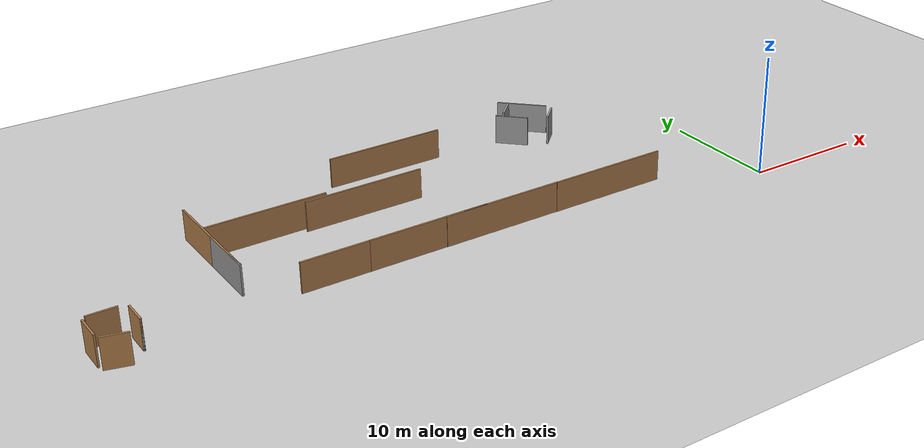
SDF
<sdf version="1.5">
 <world name="default">
  <model name="ground_plane">
   <static>1</static>
   <link name="link">
    <collision name="collision">
     <geometry><plane><normal>0 0 1</normal><size>100 100</size></plane></geometry>
     <surface><friction><ode><mu>100</mu><mu2>50</mu2></ode></friction></surface>
    </collision>
    <visual name="visual">
     <cast_shadows>0</cast_shadows>
     <geometry><plane><normal>0 0 1</normal><size>100 100</size></plane></geometry>
     <material>
      <script><uri>file://media/materials/scripts/gazebo.material</uri><name>Gazebo/Grey</name></script>
     </material>
    </visual>
   </link>
  </model>
  <model name="wall-10m-amodi_0">
   <pose>-43 11 0 0 -0 0</pose>
   <link name="Wall_24">
    <collision name="Wall_24_Collision">
     <geometry><box><size>10 0.15 2.5</size></box></geometry>
     <pose>0 0 1.25 0 -0 0</pose>
    </collision>
    <visual name="Wall_24_Visual">
     <pose>0 0 1.25 0 -0 0</pose>
     <geometry><box><size>10 0.15 2.5</size></box></geometry>
     <material>
      <script><uri>file://media/materials/scripts/gazebo.material</uri><name>Gazebo/Grey</name></script>
      <ambient>1 1 1 1</ambient>
     </material>
    </visual>
    <pose>0 -0 0 0 0 -1.5708</pose>
   </link>
   <link name="Wall_25">
    <collision name="Wall_25_Collision">
     <geometry><box><size>10 0.15 2.5</size></box></geometry>
     <pose>0 0 1.25 0 -0 0</pose>
    </collision>
    <visual name="Wall_25_Visual">
     <pose>0 0 1.25 0 -0 0</pose>
     <geometry><box><size>10 0.15 2.5</size></box></geometry>
     <material>
      <script><uri>file://media/materials/scripts/gazebo.material</uri><name>Gazebo/Wood</name></script>
      <ambient>1 1 1 1</ambient>
     </material>
    </visual>
    <pose>0 -0 0 0 -0 1.5708</pose>
   </link>
   <static>1</static>
  </model>
  <model name="wall-10m-ofoghi_3">
   <pose>-38 12.4908 0 0 -0 0</pose>
   <link name="Wall_22">
    <collision name="Wall_22_Collision">
     <geometry><box><size>10 0.15 2.5</size></box></geometry>
     <pose>0 0 1.25 0 -0 0</pose>
    </collision>
    <visual name="Wall_22_Visual">
     <pose>0 0 1.25 0 -0 0</pose>
     <geometry><box><size>10 0.15 2.5</size></box></geometry>
     <material>
      <script><uri>file://media/materials/scripts/gazebo.material</uri><name>Gazebo/Wood</name></script>
      <ambient>1 1 1 1</ambient>
     </material>
    </visual>
   </link>
   <static>1</static>
  </model>
  <model name="wall-10m-ofoghi_4">
   <pose>-30 12 0 0 -0 0</pose>
   <link name="Wall_22">
    <collision name="Wall_22_Collision">
     <geometry><box><size>10 0.15 2.5</size></box></geometry>
     <pose>0 0 1.25 0 -0 0</pose>
    </collision>
    <visual name="Wall_22_Visual">
     <pose>0 0 1.25 0 -0 0</pose>
     <geometry><box><size>10 0.15 2.5</size></box></geometry>
     <material>
      <script><uri>file://media/materials/scripts/gazebo.material</uri><name>Gazebo/Wood</name></script>
      <ambient>1 1 1 1</ambient>
     </material>
    </visual>
   </link>
   <static>1</static>
  </model>
  <model name="wall-10m-ofoghi_5">
   <pose>-12.6357 3.95502 0 0 -0 0</pose>
   <link name="Wall_22">
    <collision name="Wall_22_Collision">
     <geometry><box><size>10 0.15 2.5</size></box></geometry>
     <pose>0 0 1.25 0 -0 0</pose>
    </collision>
    <visual name="Wall_22_Visual">
     <pose>0 0 1.25 0 -0 0</pose>
     <geometry><box><size>10 0.15 2.5</size></box></geometry>
     <material>
      <script><uri>file://media/materials/scripts/gazebo.material</uri><name>Gazebo/Wood</name></script>
      <ambient>1 1 1 1</ambient>
     </material>
    </visual>
   </link>
   <static>1</static>
  </model>
  <model name="wall-10m-ofoghi_6">
   <pose>-22.5687 3.97573 0 0 -0 0</pose>
   <link name="Wall_22">
    <collision name="Wall_22_Collision">
     <geometry><box><size>10 0.15 2.5</size></box></geometry>
     <pose>0 0 1.25 0 -0 0</pose>
    </collision>
    <visual name="Wall_22_Visual">
     <pose>0 0 1.25 0 -0 0</pose>
     <geometry><box><size>10 0.15 2.5</size></box></geometry>
     <material>
      <script><uri>file://media/materials/scripts/gazebo.material</uri><name>Gazebo/Wood</name></script>
      <ambient>1 1 1 1</ambient>
     </material>
    </visual>
   </link>
   <static>1</static>
  </model>
  <model name="obs1">
   <pose>-52.8584 3.84332 0 0 -0 0</pose>
   <link name="Wall_10">
    <collision name="Wall_10_Collision">
     <geometry><box><size>2 0.15 2.5</size></box></geometry>
     <pose>0 0 1.25 0 -0 0</pose>
    </collision>
    <visual name="Wall_10_Visual">
     <pose>0 0 1.25 0 -0 0</pose>
     <geometry><box><size>2 0.15 2.5</size></box></geometry>
     <material>
      <script><uri>file://media/materials/scripts/gazebo.material</uri><name>Gazebo/Wood</name></script>
      <ambient>1 1 1 1</ambient>
     </material>
    </visual>
    <pose>-0.505188 -1.46687 0 0 0 -0.261799</pose>
   </link>
   <link name="Wall_2">
    <collision name="Wall_2_Collision">
     <geometry><box><size>2.25 0.15 2.5</size></box></geometry>
     <pose>0 0 1.25 0 -0 0</pose>
    </collision>
    <visual name="Wall_2_Visual">
     <pose>0 0 1.25 0 -0 0</pose>
     <geometry><box><size>2.25 0.15 2.5</size></box></geometry>
     <material>
      <script><uri>file://media/materials/scripts/gazebo.material</uri><name>Gazebo/Wood</name></script>
      <ambient>1 1 1 1</ambient>
     </material>
    </visual>
    <pose>-1.58039 0.313508 0 0 0 -1.5708</pose>
   </link>
   <link name="Wall_5">
    <collision name="Wall_5_Collision">
     <geometry><box><size>2.25 0.15 2.5</size></box></geometry>
     <pose>0 0 1.25 0 -0 0</pose>
    </collision>
    <visual name="Wall_5_Visual">
     <pose>0 0 1.25 0 -0 0</pose>
     <geometry><box><size>2.25 0.15 2.5</size></box></geometry>
     <material>
      <script><uri>file://media/materials/scripts/gazebo.material</uri><name>Gazebo/Wood</name></script>
      <ambient>1 1 1 1</ambient>
     </material>
    </visual>
    <pose>-0.185262 1.72313 0 0 -0 0</pose>
   </link>
   <link name="Wall_7">
    <collision name="Wall_7_Collision">
     <geometry><box><size>2 0.15 2.5</size></box></geometry>
     <pose>0 0 1.25 0 -0 0</pose>
    </collision>
    <visual name="Wall_7_Visual">
     <pose>0 0 1.25 0 -0 0</pose>
     <geometry><box><size>2 0.15 2.5</size></box></geometry>
     <material>
      <script><uri>file://media/materials/scripts/gazebo.material</uri><name>Gazebo/Wood</name></script>
      <ambient>1 1 1 1</ambient>
     </material>
    </visual>
    <pose>1.58039 0.398833 0 0 0 -1.5708</pose>
   </link>
   <link name="Wall_8">
    <collision name="Wall_8_Collision">
     <geometry><box><size>0.15 0.15 2.5</size></box></geometry>
     <pose>0 0 1.25 0 -0 0</pose>
    </collision>
    <visual name="Wall_8_Visual">
     <pose>0 0 1.25 0 -0 0</pose>
     <geometry><box><size>0.15 0.15 2.5</size></box></geometry>
     <material>
      <script><uri>file://media/materials/scripts/gazebo.material</uri><name>Gazebo/Grey</name></script>
      <ambient>1 1 1 1</ambient>
     </material>
    </visual>
    <pose>1.58039 -0.526167 0 0 -0 0</pose>
   </link>
   <static>1</static>
  </model>
  <model name="wall-10m-ofoghi_15">
   <pose>-29 4 0 0 -0 0</pose>
   <link name="Wall_22">
    <collision name="Wall_22_Collision">
     <geometry><box><size>10 0.15 2.5</size></box></geometry>
     <pose>0 0 1.25 0 -0 0</pose>
    </collision>
    <visual name="Wall_22_Visual">
     <pose>0 0 1.25 0 -0 0</pose>
     <geometry><box><size>10 0.15 2.5</size></box></geometry>
     <material>
      <script><uri>file://media/materials/scripts/gazebo.material</uri><name>Gazebo/Wood</name></script>
      <ambient>1 1 1 1</ambient>
     </material>
    </visual>
   </link>
   <static>1</static>
  </model>
  <model name="wall-10m-ofoghi_16">
   <pose>-34.5025 4 0 0 -0 0</pose>
   <link name="Wall_22">
    <collision name="Wall_22_Collision">
     <geometry><box><size>10 0.15 2.5</size></box></geometry>
     <pose>0 0 1.25 0 -0 0</pose>
    </collision>
    <visual name="Wall_22_Visual">
     <pose>0 0 1.25 0 -0 0</pose>
     <geometry><box><size>10 0.15 2.5</size></box></geometry>
     <material>
      <script><uri>file://media/materials/scripts/gazebo.material</uri><name>Gazebo/Wood</name></script>
      <ambient>1 1 1 1</ambient>
     </material>
    </visual>
   </link>
   <static>1</static>
  </model>
  <model name="obs2_8">
   <pose>-12 17 0 0 -0 0</pose>
   <link name="Wall_0">
    <collision name="Wall_0_Collision">
     <geometry><box><size>2 0.15 2.5</size></box></geometry>
     <pose>0 0 1.25 0 -0 0</pose>
    </collision>
    <visual name="Wall_0_Visual">
     <pose>0 0 1.25 0 -0 0</pose>
     <geometry><box><size>2 0.15 2.5</size></box></geometry>
     <material>
      <script><uri>file://media/materials/scripts/gazebo.material</uri><name>Gazebo/Grey</name></script>
      <ambient>1 1 1 1</ambient>
     </material>
    </visual>
    <pose>-0.796332 1.10862 0 0 -0 0.785398</pose>
   </link>
   <link name="Wall_2">
    <collision name="Wall_2_Collision">
     <geometry><box><size>4.25 0.15 2.5</size></box></geometry>
     <pose>0 0 1.25 0 -0 0</pose>
    </collision>
    <visual name="Wall_2_Visual">
     <pose>0 0 1.25 0 -0 0</pose>
     <geometry><box><size>4.25 0.15 2.5</size></box></geometry>
     <material>
      <script><uri>file://media/materials/scripts/gazebo.material</uri><name>Gazebo/Grey</name></script>
      <ambient>1 1 1 1</ambient>
     </material>
    </visual>
    <pose>0.773928 0.982661 0 0 0 -0.785398</pose>
   </link>
   <link name="Wall_4">
    <collision name="Wall_4_Collision">
     <geometry><box><size>2.75 0.15 2.5</size></box></geometry>
     <pose>0 0 1.25 0 -0 0</pose>
    </collision>
    <visual name="Wall_4_Visual">
     <pose>0 0 1.25 0 -0 0</pose>
     <geometry><box><size>2.75 0.15 2.5</size></box></geometry>
     <material>
      <script><uri>file://media/materials/scripts/gazebo.material</uri><name>Gazebo/Grey</name></script>
      <ambient>1 1 1 1</ambient>
     </material>
    </visual>
    <pose>-1.45556 -0.740711 0 0 0 -0.785398</pose>
   </link>
   <link name="Wall_6">
    <collision name="Wall_6_Collision">
     <geometry><box><size>2 0.15 2.5</size></box></geometry>
     <pose>0 0 1.25 0 -0 0</pose>
    </collision>
    <visual name="Wall_6_Visual">
     <pose>0 0 1.25 0 -0 0</pose>
     <geometry><box><size>2 0.15 2.5</size></box></geometry>
     <material>
      <script><uri>file://media/materials/scripts/gazebo.material</uri><name>Gazebo/Grey</name></script>
      <ambient>1 1 1 1</ambient>
     </material>
    </visual>
    <pose>1.72073 -1.77816 0 0 -0 0.785398</pose>
   </link>
   <static>1</static>
  </model>
  <model name="wall-10m-ofoghi_24">
   <pose>-25 17.5414 0 0 -0 0</pose>
   <link name="Wall_22">
    <collision name="Wall_22_Collision">
     <geometry><box><size>10 0.15 2.5</size></box></geometry>
     <pose>0 0 1.25 0 -0 0</pose>
    </collision>
    <visual name="Wall_22_Visual">
     <pose>0 0 1.25 0 -0 0</pose>
     <geometry><box><size>10 0.15 2.5</size></box></geometry>
     <material>
      <script><uri>file://media/materials/scripts/gazebo.material</uri><name>Gazebo/Wood</name></script>
      <ambient>1 1 1 1</ambient>
     </material>
    </visual>
   </link>
   <static>1</static>
  </model>
 </world>
</sdf>
